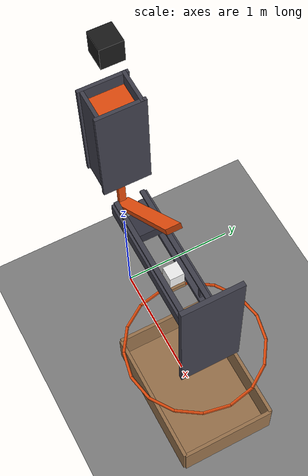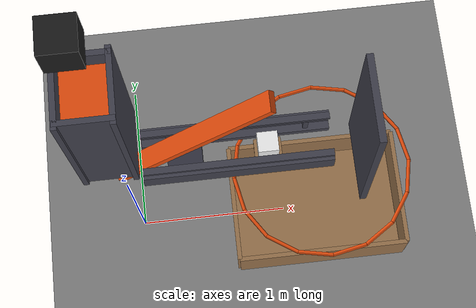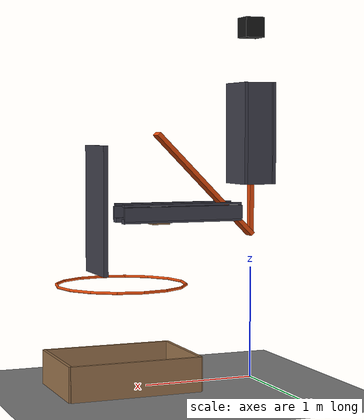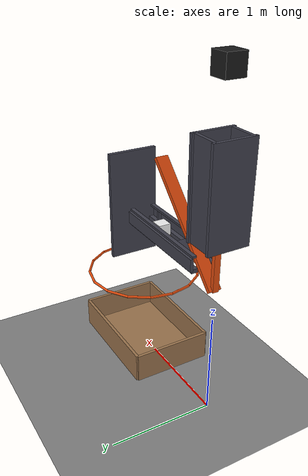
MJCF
<mujoco model="falling_trigger_and_guided_wedge">
  <compiler angle="radian"/>
  <option timestep="0.002"/>
  <worldbody>
    <geom name="floor" type="plane" size="6 6 0.1" friction="0.8 0.005 0.002"/>
    <body name="wedge" pos="0 0 2.5">
      <freejoint/>
      <geom name="wedge" type="box" pos="0 0 0" size="0.12 0.15 0.05" mass="0.2" friction="0.02 0.005 0.0001" solref="0.01 1" rgba="0.9 0.3 0.05 1"/>
      <geom name="wedge neck" type="box" pos="0 0 -0.626" size="0.02 0.03 0.576" mass="0.1" friction="0.02 0.005 0.0001" solref="0.01 1" rgba="0.9 0.3 0.05 1"/>
      <geom name="driving face" type="box" pos="0.45 0 -0.751716" size="0.636396 0.06 0.02" euler="0 -0.785398 0" mass="0.2" friction="0.02 0.005 0.0001" solref="0.01 1" rgba="0.9 0.3 0.05 1"/>
    </body>
    <body name="wedge near guide">
      <geom name="wedge near guide" type="box" pos="-0.137 0 2.2" size="0.015 0.2 0.45" friction="0.01 0.005 0.0001" rgba="0.25 0.25 0.3 1"/>
    </body>
    <body name="wedge far guide">
      <geom name="wedge far guide" type="box" pos="0.137 0 2.2" size="0.015 0.2 0.45" friction="0.01 0.005 0.0001" rgba="0.25 0.25 0.3 1"/>
    </body>
    <body name="wedge left guide">
      <geom name="wedge left guide" type="box" pos="0 0.167 2.2" size="0.15 0.015 0.45" friction="0.01 0.005 0.0001" rgba="0.25 0.25 0.3 1"/>
    </body>
    <body name="wedge right guide">
      <geom name="wedge right guide" type="box" pos="0 -0.167 2.2" size="0.15 0.015 0.45" friction="0.01 0.005 0.0001" rgba="0.25 0.25 0.3 1"/>
    </body>
    <body name="wedge left stop">
      <geom name="wedge left stop" type="box" pos="0 0.12 1.93" size="0.12 0.03 0.02" solref="0.01 1" rgba="0.25 0.25 0.3 1"/>
    </body>
    <body name="wedge right stop">
      <geom name="wedge right stop" type="box" pos="0 -0.12 1.93" size="0.12 0.03 0.02" solref="0.01 1" rgba="0.25 0.25 0.3 1"/>
    </body>
    <body name="cart left track">
      <geom name="cart left track" type="box" pos="0.7 0.105 1.45" size="0.55 0.03 0.02" friction="0.2 0.005 0.0001" rgba="0.25 0.25 0.3 1"/>
    </body>
    <body name="cart right track">
      <geom name="cart right track" type="box" pos="0.7 -0.105 1.45" size="0.55 0.03 0.02" friction="0.2 0.005 0.0001" rgba="0.25 0.25 0.3 1"/>
    </body>
    <body name="cart left guide">
      <geom name="cart left guide" type="box" pos="0.7 0.137 1.51" size="0.55 0.015 0.06" friction="0.02 0.005 0.0001" rgba="0.25 0.25 0.3 1"/>
    </body>
    <body name="cart right guide">
      <geom name="cart right guide" type="box" pos="0.7 -0.137 1.51" size="0.55 0.015 0.06" friction="0.02 0.005 0.0001" rgba="0.25 0.25 0.3 1"/>
    </body>
    <body name="cart left keeper">
      <geom name="cart left keeper" type="box" pos="0.7 0.112 1.584" size="0.55 0.02 0.01" friction="0.02 0.005 0.0001" rgba="0.25 0.25 0.3 1"/>
    </body>
    <body name="cart right keeper">
      <geom name="cart right keeper" type="box" pos="0.7 -0.112 1.584" size="0.55 0.02 0.01" friction="0.02 0.005 0.0001" rgba="0.25 0.25 0.3 1"/>
    </body>
    <body name="cart left stop">
      <geom name="cart left stop" type="box" pos="1.11 0.11 1.52" size="0.015 0.02 0.05" solref="0.01 1" rgba="0.25 0.25 0.3 1"/>
    </body>
    <body name="cart right stop">
      <geom name="cart right stop" type="box" pos="1.11 -0.11 1.52" size="0.015 0.02 0.05" solref="0.01 1" rgba="0.25 0.25 0.3 1"/>
    </body>
    <body name="cart" pos="0.4 0 1.52">
      <freejoint/>
      <geom name="cart" type="box" pos="0 0 0" size="0.1 0.12 0.05" mass="4" friction="0.2 0.005 0.002" solref="0.01 1" rgba="0.2 0.2 0.25 1"/>
    </body>
    <body name="ledge">
      <geom name="ledge" type="box" pos="0.88 0 1.43" size="0.08 0.06 0.02" friction="0.08 0.005 0.0001" rgba="0.6 0.45 0.3 1"/>
    </body>
    <body name="block" pos="0.88 0 1.51">
      <freejoint/>
      <geom name="block" type="box" pos="0 0 0" size="0.06 0.06 0.06" mass="0.15" friction="0.25 0.01 0.004" solref="0.01 1" rgba="0.95 0.95 0.95 1"/>
    </body>
    <body name="hoop">
      <geom name="hoop_00" type="capsule" size="0.012" fromto="1.792 0 0.9 1.74922 0.215068 0.9" rgba="0.9 0.3 0.05 1"/>
      <geom name="hoop_01" type="capsule" size="0.012" fromto="1.74922 0.215068 0.9 1.62739 0.397394 0.9" rgba="0.9 0.3 0.05 1"/>
      <geom name="hoop_02" type="capsule" size="0.012" fromto="1.62739 0.397394 0.9 1.44507 0.51922 0.9" rgba="0.9 0.3 0.05 1"/>
      <geom name="hoop_03" type="capsule" size="0.012" fromto="1.44507 0.51922 0.9 1.23 0.562 0.9" rgba="0.9 0.3 0.05 1"/>
      <geom name="hoop_04" type="capsule" size="0.012" fromto="1.23 0.562 0.9 1.01493 0.51922 0.9" rgba="0.9 0.3 0.05 1"/>
      <geom name="hoop_05" type="capsule" size="0.012" fromto="1.01493 0.51922 0.9 0.832606 0.397394 0.9" rgba="0.9 0.3 0.05 1"/>
      <geom name="hoop_06" type="capsule" size="0.012" fromto="0.832606 0.397394 0.9 0.71078 0.215068 0.9" rgba="0.9 0.3 0.05 1"/>
      <geom name="hoop_07" type="capsule" size="0.012" fromto="0.71078 0.215068 0.9 0.668 6.88252e-17 0.9" rgba="0.9 0.3 0.05 1"/>
      <geom name="hoop_08" type="capsule" size="0.012" fromto="0.668 6.88252e-17 0.9 0.71078 -0.215068 0.9" rgba="0.9 0.3 0.05 1"/>
      <geom name="hoop_09" type="capsule" size="0.012" fromto="0.71078 -0.215068 0.9 0.832606 -0.397394 0.9" rgba="0.9 0.3 0.05 1"/>
      <geom name="hoop_10" type="capsule" size="0.012" fromto="0.832606 -0.397394 0.9 1.01493 -0.51922 0.9" rgba="0.9 0.3 0.05 1"/>
      <geom name="hoop_11" type="capsule" size="0.012" fromto="1.01493 -0.51922 0.9 1.23 -0.562 0.9" rgba="0.9 0.3 0.05 1"/>
      <geom name="hoop_12" type="capsule" size="0.012" fromto="1.23 -0.562 0.9 1.44507 -0.51922 0.9" rgba="0.9 0.3 0.05 1"/>
      <geom name="hoop_13" type="capsule" size="0.012" fromto="1.44507 -0.51922 0.9 1.62739 -0.397394 0.9" rgba="0.9 0.3 0.05 1"/>
      <geom name="hoop_14" type="capsule" size="0.012" fromto="1.62739 -0.397394 0.9 1.74922 -0.215068 0.9" rgba="0.9 0.3 0.05 1"/>
      <geom name="hoop_15" type="capsule" size="0.012" fromto="1.74922 -0.215068 0.9 1.792 -1.3765e-16 0.9" rgba="0.9 0.3 0.05 1"/>
    </body>
    <body name="box">
      <geom name="box_base" type="box" pos="1.23 0 0.015" size="0.58 0.4 0.015" friction="0.8 0.01 0.004" solref="0.01 1" rgba="0.6 0.45 0.3 1"/>
      <geom name="box_near_wall" type="box" pos="0.65 0 0.15" size="0.015 0.4 0.15" friction="0.8 0.01 0.004" solref="0.01 1" rgba="0.6 0.45 0.3 1"/>
      <geom name="box_far_wall" type="box" pos="1.81 0 0.15" size="0.015 0.4 0.15" friction="0.8 0.01 0.004" solref="0.01 1" rgba="0.6 0.45 0.3 1"/>
      <geom name="box_left_wall" type="box" pos="1.23 0.4 0.15" size="0.58 0.015 0.15" friction="0.8 0.01 0.004" solref="0.01 1" rgba="0.6 0.45 0.3 1"/>
      <geom name="box_right_wall" type="box" pos="1.23 -0.4 0.15" size="0.58 0.015 0.15" friction="0.8 0.01 0.004" solref="0.01 1" rgba="0.6 0.45 0.3 1"/>
    </body>
    <body name="payload backstop">
      <geom name="payload backstop" type="box" pos="1.45 0 1.55" size="0.02 0.25 0.55" friction="0.05 0.005 0.0001" solref="0.01 1" rgba="0.25 0.25 0.3 1"/>
    </body>
    <body name="trigger" pos="0 0 3.14">
      <freejoint/>
      <geom name="trigger" type="box" pos="0 0 0" size="0.09 0.09 0.09" mass="6" friction="0.3 0.005 0.0001" solref="0.01 1" rgba="0.1 0.1 0.1 1"/>
    </body>
  </worldbody>
  <keyframe>
    <key name="start" qpos="0 0 2.5 1 0 0 0 0.4 0 1.52 1 0 0 0 0.88 0 1.51 1 0 0 0 0 0 3.14 1 0 0 0" qvel="0 0 0 0 0 0 0 0 0 0 0 0 0 0 0 0 0 0 0 0 0 0 0 0"/>
  </keyframe>
</mujoco>
